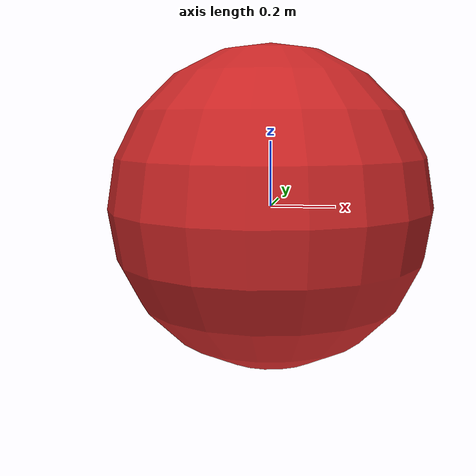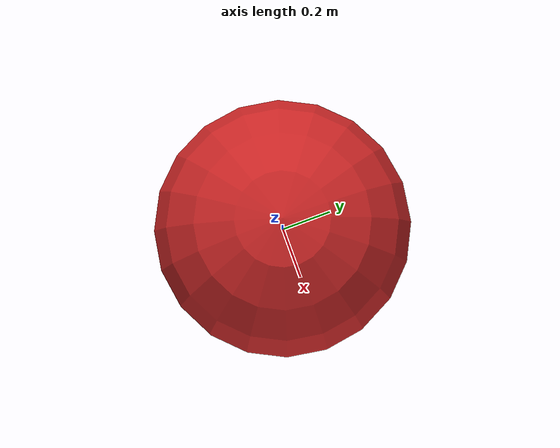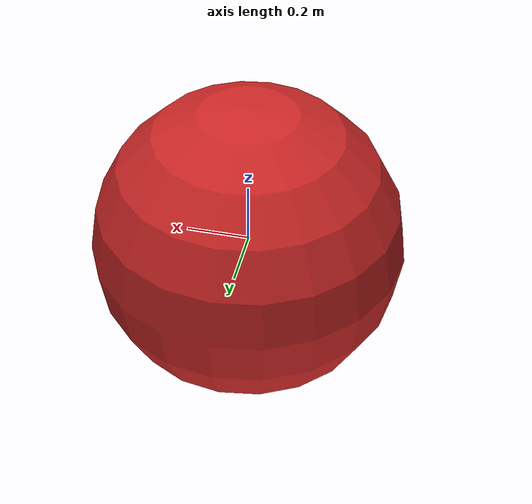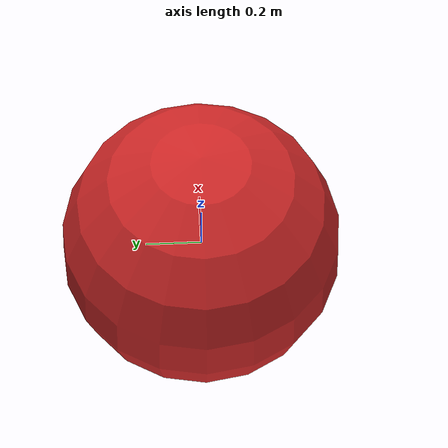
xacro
<?xml version="1.0" ?>

<robot name="ball" xmlns:xacro="http://ros.org/wiki/xacro">
    <xacro:include filename="$(find turtlebot3_description)/urdf/common_properties.xacro"/>
    <xacro:include filename="$(find sumobots)/urdf/ball.gazebo.xacro"/>

    <link name="base_link">
        <visual>
            <origin xyz="0 0 0" rpy="0 0 0"/>
            <geometry>
                <sphere radius=".5"/>
            </geometry>
            <material name="red"/>
        </visual>

        <collision>
            <origin xyz="0 0 0" rpy="0 0 0"/>
            <geometry>
                <sphere radius=".5"/>
            </geometry>
        </collision>

        <inertial>
            <origin xyz="0 0 0" rpy="0 0 0"/>
            <mass value="1.3729096e+00"/>
            <inertia ixx="8.7002718e-03" ixy="-4.7576583e-05" ixz="1.1160499e-04"
                 iyy="8.6195418e-03" iyz="-3.5422299e-06"
                 izz="1.4612727e-02" />
        </inertial>
    </link>

    <link name="extra">
        <visual>
            <origin xyz="0 0 0" rpy="0 0 0"/>
            <geometry>
                <sphere radius=".2"/>
            </geometry>
            <material name="red"/>
        </visual>

        <collision>
            <origin xyz="0 0 0" rpy="0 0 0"/>
            <geometry>
                <sphere radius=".2"/>
            </geometry>
        </collision>

        <inertial>
            <origin xyz="0 0 0" rpy="0 0 0"/>
            <mass value="1.3729096e+00"/>
            <inertia ixx="8.7002718e-03" ixy="-4.7576583e-05" ixz="1.1160499e-04"
                 iyy="8.6195418e-03" iyz="-3.5422299e-06"
                 izz="1.4612727e-02" />
        </inertial>
    </link>
    <joint name="extra_joint" type="continuous">
        <parent link="base_link"/>
        <child link="extra"/>
        <origin xyz="0.0 0.144 0.023" rpy="-1.57 0 0"/>
        <axis xyz="0 0 1"/>
    </joint>
</robot>
